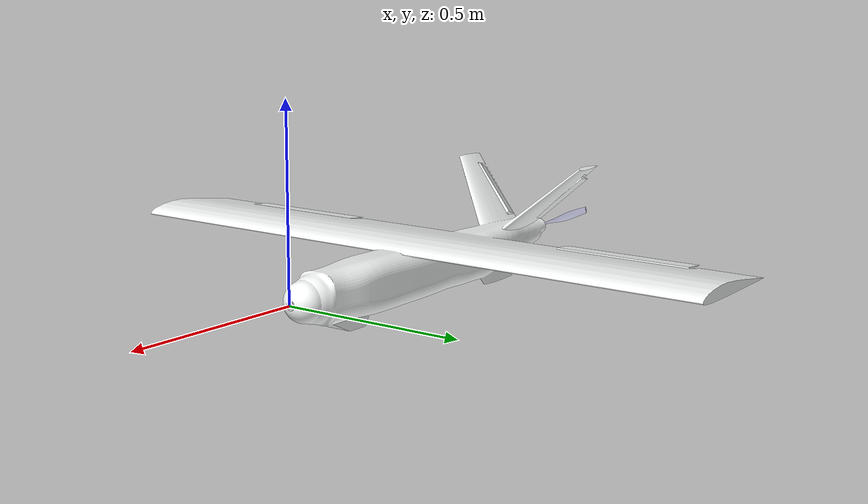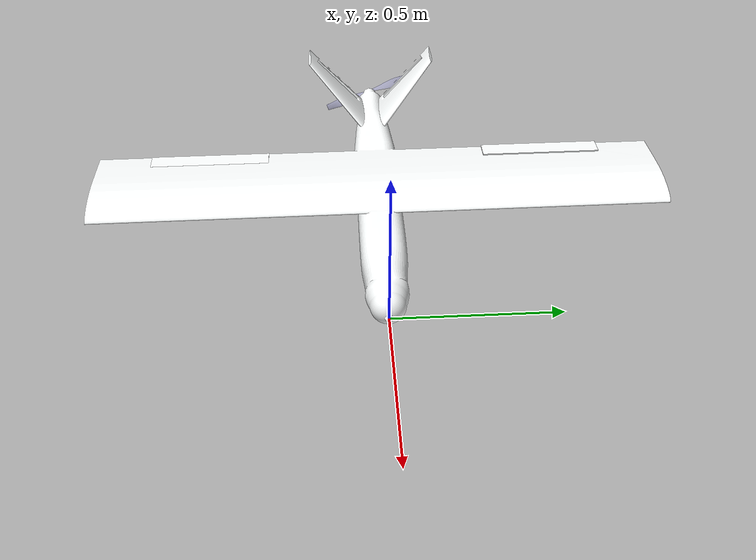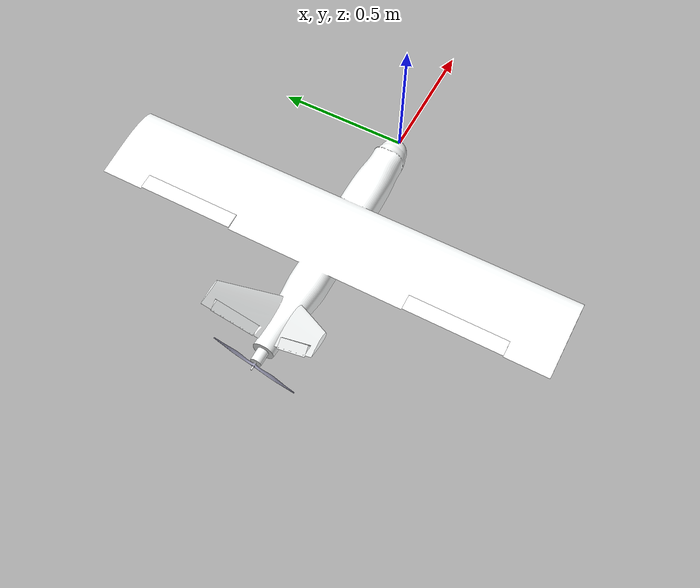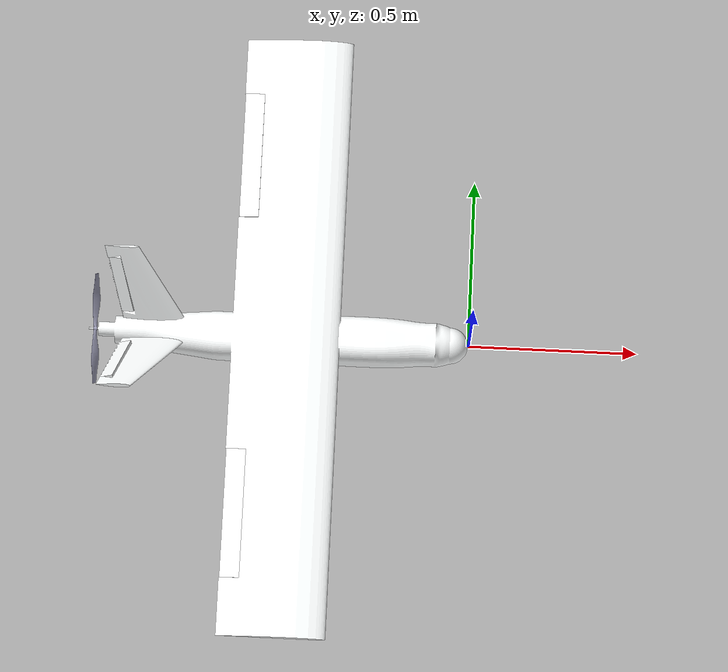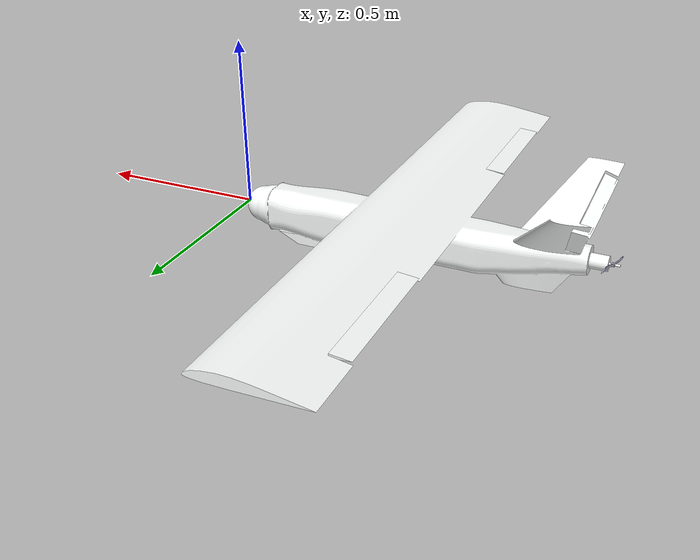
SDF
<sdf version='1.11'>
  <model name='tuygun_6'>
    <link name='base_link'>
      <inertial>
        <pose>-0.52773999999999999 2.4842e-07 0.036554999999999997 0 0 0</pose>
        <mass>3.8500000000000001</mass>
        <inertia>
          <ixx>3.3416000000000001</ixx>
          <ixy>1.4572999999999999e-05</ixy>
          <ixz>0.051393000000000001</ixz>
          <iyy>1.1224000000000001</iyy>
          <iyz>-8.0568000000000005e-07</iyz>
          <izz>4.3966000000000003</izz>
        </inertia>
      </inertial>
      <collision name='base_link_collision'>
        <pose>0 0 0 0 0 0</pose>
        <geometry>
          <mesh>
            <scale>1 1 1</scale>
            <uri>meshes/base_link.STL</uri>
          </mesh>
        </geometry>
      </collision>
      <visual name='base_link_visual'>
        <pose>0 0 0 0 0 0</pose>
        <geometry>
          <mesh>
            <scale>1 1 1</scale>
            <uri>meshes/base_link.STL</uri>
          </mesh>
        </geometry>
        <material>
          <diffuse>0.990199983 1 1 1</diffuse>
          <ambient>0.990199983 1 1 1</ambient>
        </material>
      </visual>
    </link>
    <joint name='flap' type='revolute'>
      <pose relative_to='base_link'>-0.64049 0.34975000000000001 0.065132999999999996 0 0 1.5708</pose>
      <parent>base_link</parent>
      <child>flap_front</child>
      <axis>
        <xyz>0 0 1</xyz>
        <limit>
          <lower>0</lower>
          <upper>0</upper>
          <effort>0</effort>
          <velocity>0</velocity>
        </limit>
        <dynamics>
          <spring_reference>0</spring_reference>
          <spring_stiffness>0</spring_stiffness>
        </dynamics>
      </axis>
    </joint>
    <link name='flap_front'>
      <pose relative_to='flap'>0 0 0 0 0 0</pose>
      <inertial>
        <pose>-0.34999999999999998 0.019332999999999999 0.0077253 0 0 0</pose>
        <mass>0.24243999999999999</mass>
        <inertia>
          <ixx>4.6532000000000001e-05</ixx>
          <ixy>1.1183e-20</ixy>
          <ixz>-4.042e-21</ixz>
          <iyy>0.0029185999999999999</iyy>
          <iyz>4.2208999999999998e-20</iyz>
          <izz>0.0029627</izz>
        </inertia>
      </inertial>
      <collision name='flap_front_collision'>
        <pose>0 0 0 0 0 0</pose>
        <geometry>
          <mesh>
            <scale>1 1 1</scale>
            <uri>meshes/flap_front.STL</uri>
          </mesh>
        </geometry>
      </collision>
      <visual name='flap_front_visual'>
        <pose>0 0 0 0 0 0</pose>
        <geometry>
          <mesh>
            <scale>1 1 1</scale>
            <uri>meshes/flap_front.STL</uri>
          </mesh>
        </geometry>
        <material>
          <diffuse>0.990199983 1 1 1</diffuse>
          <ambient>0.990199983 1 1 1</ambient>
        </material>
      </visual>
    </link>
    <joint name='flap(1)' type='revolute'>
      <pose relative_to='base_link'>-1.0135000000000001 -0.046901999999999999 0.068770999999999999 -2.7431999999999999 -0.74466000000000021 -1.8487</pose>
      <parent>base_link</parent>
      <child>flap_back</child>
      <axis>
        <xyz>0.67771999999999999 -0.28527000000000002 -0.67771999999999999</xyz>
        <limit>
          <lower>0</lower>
          <upper>0</upper>
          <effort>0</effort>
          <velocity>0</velocity>
        </limit>
        <dynamics>
          <spring_reference>0</spring_reference>
          <spring_stiffness>0</spring_stiffness>
        </dynamics>
      </axis>
    </joint>
    <link name='flap_back'>
      <pose relative_to='flap(1)'>0 0 0 0 0 0</pose>
      <inertial>
        <pose>0.011845 -0.0075948999999999999 -0.080187999999999995 0 0 0</pose>
        <mass>0.10779</mass>
        <inertia>
          <ixx>0.00016375</ixx>
          <ixy>1.9817000000000001e-08</ixy>
          <ixz>-1.8925000000000001e-06</ixz>
          <iyy>0.00030838000000000003</iyy>
          <iyz>1.9572999999999999e-08</iyz>
          <izz>0.00016379</izz>
        </inertia>
      </inertial>
      <collision name='flap_back_collision'>
        <pose>0 0 0 0 0 0</pose>
        <geometry>
          <mesh>
            <scale>1 1 1</scale>
            <uri>meshes/flap_back.STL</uri>
          </mesh>
        </geometry>
      </collision>
      <visual name='flap_back_visual'>
        <pose>0 0 0 0 0 0</pose>
        <geometry>
          <mesh>
            <scale>1 1 1</scale>
            <uri>meshes/flap_back.STL</uri>
          </mesh>
        </geometry>
        <material>
          <diffuse>0.990199983 1 1 1</diffuse>
          <ambient>0.990199983 1 1 1</ambient>
        </material>
      </visual>
    </link>
    <joint name='propeller' type='revolute'>
      <pose relative_to='base_link'>-1.0972 0 0.025000000000000001 3.1415853071795858 0.38841000000000003 -1.5708</pose>
      <parent>base_link</parent>
      <child>propeller_link</child>
      <axis>
        <xyz>0 1 0</xyz>
        <limit>
          <lower>-inf</lower>
          <upper>inf</upper>
        </limit>
        <dynamics>
          <spring_reference>0</spring_reference>
          <spring_stiffness>0</spring_stiffness>
        </dynamics>
      </axis>
    </joint>
    <link name='propeller_link'>
      <pose relative_to='propeller'>0 0 0 0 0 0</pose>
      <inertial>
        <pose>3.4176999999999999e-06 0.011431999999999999 -0.00043375 0 0 0</pose>
        <mass>0.022766999999999999</mass>
        <inertia>
          <ixx>8.5097999999999996e-07</ixx>
          <ixy>-5.8258999999999995e-10</ixy>
          <ixz>1.3689000000000001e-09</ixz>
          <iyy>0.00023505999999999999</iyy>
          <iyz>3.6394000000000002e-07</iyz>
          <izz>0.00023491000000000001</izz>
        </inertia>
      </inertial>
      <collision name='propeller_link_collision'>
        <pose>0 0 0 0 0 0</pose>
        <geometry>
          <mesh>
            <scale>1 1 1</scale>
            <uri>meshes/propeller_link.STL</uri>
          </mesh>
        </geometry>
      </collision>
      <visual name='propeller_link_visual'>
        <pose>0 0 0 0 0 0</pose>
        <geometry>
          <mesh>
            <scale>1 1 1</scale>
            <uri>meshes/propeller_link.STL</uri>
          </mesh>
        </geometry>
        <material>
          <diffuse>0.637250006 0.637250006 0.735300064 1</diffuse>
          <ambient>0.637250006 0.637250006 0.735300064 1</ambient>
        </material>
      </visual>
    </link>
  </model>
</sdf>
